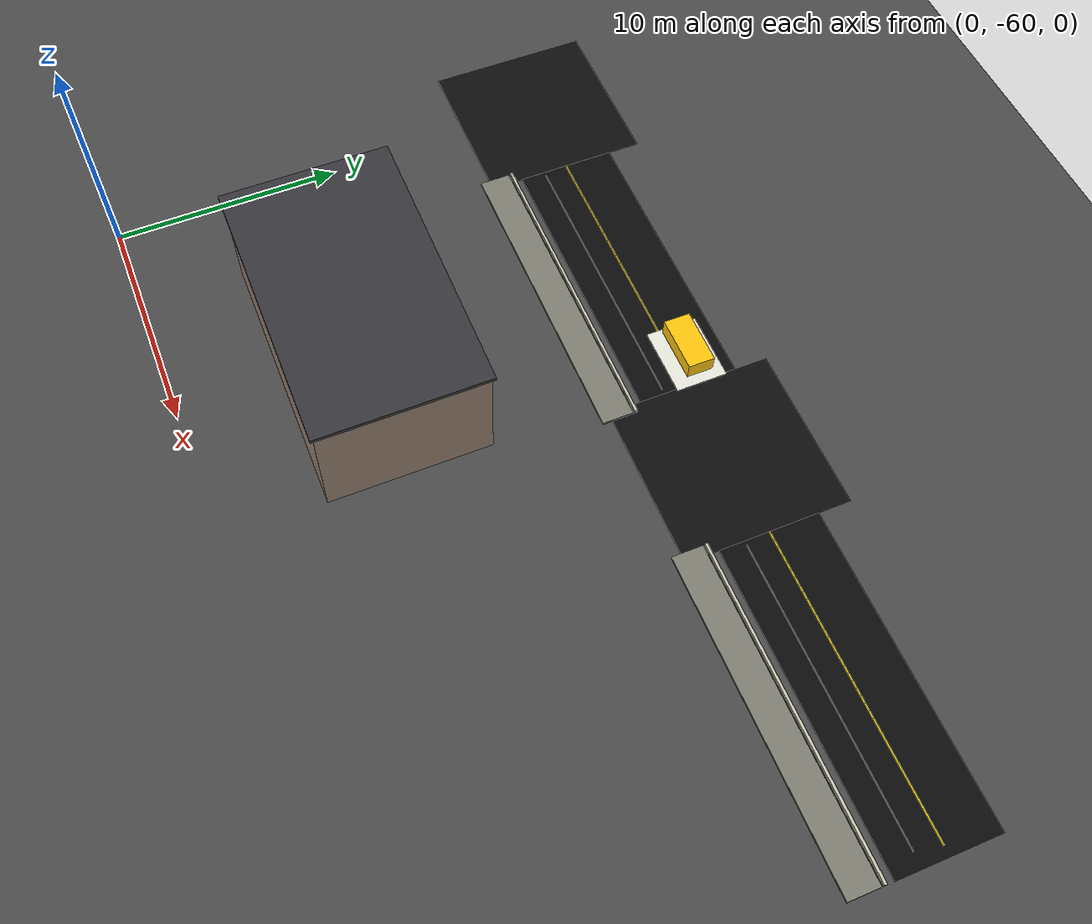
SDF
<sdf version="1.9">
 <world name="smart_city_world">
  <model name="ground">
   <static>true</static>
   <link name="link">
    <collision name="collision"><geometry><box><size>145 145 0.05</size></box></geometry></collision>
    <visual name="visual">
     <geometry><box><size>145 145 0.05</size></box></geometry>
     <material><ambient>0.30 0.30 0.30 1</ambient><diffuse>0.30 0.30 0.30 1</diffuse></material>
    </visual>
   </link>
  </model>
  <model name="road_e19">
   <static>true</static>
   <pose>10.000 -40.000 0.018 0 0 0.000000</pose>
   <link name="link">
    <collision name="collision"><geometry><box><size>13.600 4.350 0.030</size></box></geometry></collision>
    <visual name="visual">
     <geometry><box><size>13.600 4.350 0.030</size></box></geometry>
     <material><ambient>0.045 0.047 0.05 1</ambient><diffuse>0.045 0.047 0.05 1</diffuse></material>
    </visual>
   </link>
  </model>
  <model name="center_line_e19">
   <static>true</static>
   <pose>10.000 -40.000 0.052 0 0 0.000000</pose>
   <link name="link">
    <visual name="visual">
     <geometry><box><size>12.800 0.070 0.010</size></box></geometry>
     <material><ambient>1 0.86 0.05 1</ambient><diffuse>1 0.86 0.05 1</diffuse></material>
    </visual>
   </link>
  </model>
  <model name="sidewalk_e19_R">
   <static>true</static>
   <pose>10.000 -43.350 0.075 0 0 0.000000</pose>
   <link name="link">
    <visual name="visual">
     <geometry><box><size>13.600 1.350 0.100</size></box></geometry>
     <material><ambient>0.5 0.5 0.46 1</ambient><diffuse>0.5 0.5 0.46 1</diffuse></material>
    </visual>
   </link>
  </model>
  <model name="curb_e19_R">
   <static>true</static>
   <pose>10.000 -42.550 0.130 0 0 0.000000</pose>
   <link name="link">
    <visual name="visual">
     <geometry><box><size>13.600 0.120 0.180</size></box></geometry>
     <material><ambient>0.8 0.78 0.7 1</ambient><diffuse>0.8 0.78 0.7 1</diffuse></material>
    </visual>
   </link>
  </model>
  <model name="edge_line_e19_R">
   <static>true</static>
   <pose>10.000 -41.080 0.054 0 0 0.000000</pose>
   <link name="link">
    <visual name="visual">
     <geometry><box><size>12.400 0.035 0.010</size></box></geometry>
     <material><ambient>0.85 0.85 0.85 1</ambient><diffuse>0.85 0.85 0.85 1</diffuse></material>
    </visual>
   </link>
  </model>
  <model name="road_e20">
   <static>true</static>
   <pose>30.000 -40.000 0.018 0 0 0.000000</pose>
   <link name="link">
    <collision name="collision"><geometry><box><size>13.600 4.350 0.030</size></box></geometry></collision>
    <visual name="visual">
     <geometry><box><size>13.600 4.350 0.030</size></box></geometry>
     <material><ambient>0.045 0.047 0.05 1</ambient><diffuse>0.045 0.047 0.05 1</diffuse></material>
    </visual>
   </link>
  </model>
  <model name="center_line_e20">
   <static>true</static>
   <pose>30.000 -40.000 0.052 0 0 0.000000</pose>
   <link name="link">
    <visual name="visual">
     <geometry><box><size>12.800 0.070 0.010</size></box></geometry>
     <material><ambient>1 0.86 0.05 1</ambient><diffuse>1 0.86 0.05 1</diffuse></material>
    </visual>
   </link>
  </model>
  <model name="sidewalk_e20_R">
   <static>true</static>
   <pose>30.000 -43.350 0.075 0 0 0.000000</pose>
   <link name="link">
    <visual name="visual">
     <geometry><box><size>13.600 1.350 0.100</size></box></geometry>
     <material><ambient>0.5 0.5 0.46 1</ambient><diffuse>0.5 0.5 0.46 1</diffuse></material>
    </visual>
   </link>
  </model>
  <model name="curb_e20_R">
   <static>true</static>
   <pose>30.000 -42.550 0.130 0 0 0.000000</pose>
   <link name="link">
    <visual name="visual">
     <geometry><box><size>13.600 0.120 0.180</size></box></geometry>
     <material><ambient>0.8 0.78 0.7 1</ambient><diffuse>0.8 0.78 0.7 1</diffuse></material>
    </visual>
   </link>
  </model>
  <model name="edge_line_e20_R">
   <static>true</static>
   <pose>30.000 -41.080 0.054 0 0 0.000000</pose>
   <link name="link">
    <visual name="visual">
     <geometry><box><size>12.400 0.035 0.010</size></box></geometry>
     <material><ambient>0.85 0.85 0.85 1</ambient><diffuse>0.85 0.85 0.85 1</diffuse></material>
    </visual>
   </link>
  </model>
  <model name="intersection_plate_n23">
   <static>true</static>
   <pose>0.000 -40.000 0.025 0 0 0.000000</pose>
   <link name="link">
    <collision name="collision"><geometry><box><size>7.200 7.200 0.035</size></box></geometry></collision>
    <visual name="visual">
     <geometry><box><size>7.200 7.200 0.035</size></box></geometry>
     <material><ambient>0.055 0.055 0.058 1</ambient><diffuse>0.055 0.055 0.058 1</diffuse></material>
    </visual>
   </link>
  </model>
  <model name="intersection_plate_n24">
   <static>true</static>
   <pose>20.000 -40.000 0.025 0 0 0.000000</pose>
   <link name="link">
    <collision name="collision"><geometry><box><size>7.200 7.200 0.035</size></box></geometry></collision>
    <visual name="visual">
     <geometry><box><size>7.200 7.200 0.035</size></box></geometry>
     <material><ambient>0.055 0.055 0.058 1</ambient><diffuse>0.055 0.055 0.058 1</diffuse></material>
    </visual>
   </link>
  </model>
  <model name="parking_taxi_2">
   <static>true</static>
   <pose>15.000 -39.400 0.052 0 0 0.000000</pose>
   <link name="link">
    <collision name="collision"><geometry><box><size>3.000 2.250 0.050</size></box></geometry></collision>
    <visual name="visual">
     <geometry><box><size>3.000 2.250 0.050</size></box></geometry>
     <material><ambient>0.92 0.92 0.88 1</ambient><diffuse>0.92 0.92 0.88 1</diffuse></material>
    </visual>
   </link>
  </model>
  <model name="apartment_b">
   <static>true</static>
   <pose>10.000 -52.000 2.500 0 0 0.000000</pose>
   <link name="link">
    <collision name="collision"><geometry><box><size>12.000 7.000 5.000</size></box></geometry></collision>
    <visual name="visual">
     <geometry><box><size>12.000 7.000 5.000</size></box></geometry>
     <material><ambient>0.58 0.5 0.44 1</ambient><diffuse>0.58 0.5 0.44 1</diffuse></material>
    </visual>
   </link>
  </model>
  <model name="apartment_b_roof">
   <static>true</static>
   <pose>10.000 -52.000 5.080 0 0 0.000000</pose>
   <link name="link">
    <visual name="visual">
     <geometry><box><size>12.250 7.250 0.160</size></box></geometry>
     <material><ambient>0.22 0.22 0.24 1</ambient><diffuse>0.22 0.22 0.24 1</diffuse></material>
    </visual>
   </link>
  </model>
  <model name="taxi_2">
   <pose>15.000 -39.400 0.28 0 0 3.1400</pose>
   <link name="base_link">
    <inertial>
     <pose>0 0 0.18 0 0 0</pose>
     <mass>1200</mass>
     <inertia><ixx>190</ixx><iyy>635</iyy><izz>710</izz><ixy>0</ixy><ixz>0</ixz><iyz>0</iyz></inertia>
    </inertial>
    <collision name="body_collision">
     <pose>0 0 0.48 0 0 0</pose>
     <geometry><box><size>2.4 1.15 0.75</size></box></geometry>
     <surface>
      <friction><ode><mu>4.0</mu><mu2>4.0</mu2><slip1>0.0</slip1><slip2>0.0</slip2></ode></friction>
      <contact>
       <ode><kp>1200000</kp><kd>24000</kd><max_vel>0.05</max_vel><min_depth>0.001</min_depth></ode>
      </contact>
      <bounce><restitution_coefficient>0.0</restitution_coefficient><threshold>100000.0</threshold></bounce>
     </surface>
    </collision>
    <visual name="body_visual">
     <pose>0 0 0.48 0 0 0</pose>
     <geometry><box><size>2.4 1.15 0.75</size></box></geometry>
     <material><ambient>1.00 0.78 0.05 1</ambient><diffuse>1.00 0.78 0.05 1</diffuse></material>
    </visual>
    <sensor name="lidar" type="gpu_lidar">
     <pose>1.320 0 1.350 0 0 0</pose>
     <topic>/taxi_2/scan</topic>
     <update_rate>10</update_rate>
     <lidar>
      <scan>
       <horizontal>
        <samples>360</samples>
        <resolution>1</resolution>
        <min_angle>-3.14159</min_angle>
        <max_angle>3.14159</max_angle>
       </horizontal>
      </scan>
      <range><min>0.12</min><max>18.0</max><resolution>0.03</resolution></range>
     </lidar>
     <always_on>1</always_on>
     <visualize>false</visualize>
    </sensor>
   </link>
   <link name="left_wheel">
    <pose>0 0.460 0.180 1.5708 0 0</pose>
    <collision name="collision">
     <geometry><cylinder><radius>0.18</radius><length>0.16</length></cylinder></geometry>
     <surface>
      <friction><ode><mu>4.0</mu><mu2>4.0</mu2><slip1>0.0</slip1><slip2>0.0</slip2></ode></friction>
      <contact>
       <ode><kp>1200000</kp><kd>24000</kd><max_vel>0.05</max_vel><min_depth>0.001</min_depth></ode>
      </contact>
      <bounce><restitution_coefficient>0.0</restitution_coefficient><threshold>100000.0</threshold></bounce>
     </surface>
    </collision>
    <visual name="visual">
     <geometry><cylinder><radius>0.18</radius><length>0.16</length></cylinder></geometry>
     <material><ambient>0.01 0.01 0.01 1</ambient><diffuse>0.01 0.01 0.01 1</diffuse></material>
    </visual>
   </link>
   <link name="right_wheel">
    <pose>0 -0.460 0.180 1.5708 0 0</pose>
    <collision name="collision">
     <geometry><cylinder><radius>0.18</radius><length>0.16</length></cylinder></geometry>
     <surface>
      <friction><ode><mu>4.0</mu><mu2>4.0</mu2><slip1>0.0</slip1><slip2>0.0</slip2></ode></friction>
      <contact>
       <ode><kp>1200000</kp><kd>24000</kd><max_vel>0.05</max_vel><min_depth>0.001</min_depth></ode>
      </contact>
      <bounce><restitution_coefficient>0.0</restitution_coefficient><threshold>100000.0</threshold></bounce>
     </surface>
    </collision>
    <visual name="visual">
     <geometry><cylinder><radius>0.18</radius><length>0.16</length></cylinder></geometry>
     <material><ambient>0.01 0.01 0.01 1</ambient><diffuse>0.01 0.01 0.01 1</diffuse></material>
    </visual>
   </link>
   <joint name="left_wheel_joint" type="revolute">
    <parent>base_link</parent>
    <child>left_wheel</child>
    <axis>
     <xyz>0 0 1</xyz>
     <limit><lower>-1e16</lower><upper>1e16</upper></limit>
     <dynamics><damping>2.5</damping><friction>0.8</friction></dynamics>
    </axis>
   </joint>
   <joint name="right_wheel_joint" type="revolute">
    <parent>base_link</parent>
    <child>right_wheel</child>
    <axis>
     <xyz>0 0 1</xyz>
     <limit><lower>-1e16</lower><upper>1e16</upper></limit>
     <dynamics><damping>2.5</damping><friction>0.8</friction></dynamics>
    </axis>
   </joint>
   <plugin filename="gz-sim-diff-drive-system" name="gz::sim::systems::DiffDrive">
    <left_joint>left_wheel_joint</left_joint>
    <right_joint>right_wheel_joint</right_joint>
    <wheel_separation>0.92</wheel_separation>
    <wheel_radius>0.18</wheel_radius>
    <topic>/taxi_2/cmd_vel</topic>
    <odom_topic>/taxi_2/odom</odom_topic>
    <frame_id>taxi_2/odom</frame_id>
    <child_frame_id>taxi_2/base_link</child_frame_id>
    <odom_publish_frequency>30</odom_publish_frequency>
   </plugin>
   <plugin filename="libmodel_world_pose_publisher.so" name="smart_city::ModelWorldPosePublisher"/>
  </model>
 </world>
</sdf>
